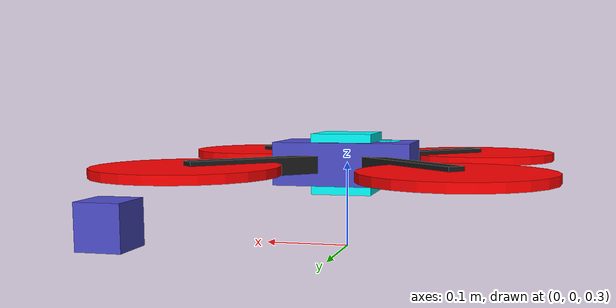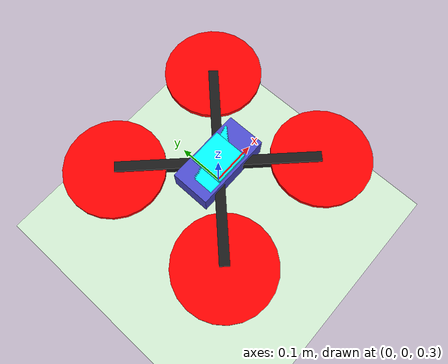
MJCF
<?xml version="1.0" ?>
<mujoco model="Quadcopter">
   <compiler angle="degree" coordinate="local" inertiafromgeom="true"/>
   <asset>
      <texture type="skybox" builtin="gradient" rgb1="1.0 1.0 1.0" rgb2="0.6 0.8 1.0" width="256" height="256"/>
   </asset>
   <worldbody>
      <geom name="ground" type="plane" size="5.0 5.0 0.02" friction="1.0" pos="0.0 0.0 0.0" rgba="0.8 0.9 0.8 1.0"/>
      <light directional="true" diffuse=".9 .9 .9" specular=".3 .3 .3" pos="0 0 4.0" dir="0 0.15 -1"/>
      <body name="plant" pos="0.0 0.0 0.4" quat="1 0 0 0">
         <geom name="plant_geom" type="box" pos="0.0 0.0 0.0" quat="1 0 0 0" size="0.08 0.04 0.025" mass="0.75" density="1000" rgba="0.3 0.3 0.8 1.0"/>
         <joint name="plant_root_joint" type="free" limited="false" pos="0.0 0.0 0.0" axis="0.0 0.0 1.0" range="-1.0 1.0" armature="0.0" damping="0.1" stiffness="0.0"/>
         <geom name="plant_rotor_arm_geom_0" type="box" pos="0.0 0.0 0.0" quat="0.92388 0 0 0.382683" size="0.2 0.01 0.01" mass="0.01" density="1000" rgba="0.1 0.1 0.1 1.0"/>
         <geom name="plant_rotor_prop_geom_0" type="cylinder" size="0.1 0.005" pos="0.1414213562373095 0.14142135623730953 0.0" mass="0.05" density="1000" rgba="1.0 0.0 0.0 1.0"/>
         <geom name="plant_rotor_arm_geom_1" type="box" pos="0.0 0.0 0.0" quat="0.382683 0 0 0.92388" size="0.2 0.01 0.01" mass="0.01" density="1000" rgba="0.1 0.1 0.1 1.0"/>
         <geom name="plant_rotor_prop_geom_1" type="cylinder" size="0.1 0.005" pos="-0.1414213562373095 0.14142135623730953 0.0" mass="0.05" density="1000" rgba="1.0 0.0 0.0 1.0"/>
         <geom name="plant_rotor_arm_geom_2" type="box" pos="0.0 0.0 0.0" quat="-0.382683 0 0 0.92388" size="0.2 0.01 0.01" mass="0.01" density="1000" rgba="0.1 0.1 0.1 1.0"/>
         <geom name="plant_rotor_prop_geom_2" type="cylinder" size="0.1 0.005" pos="-0.1414213562373095 -0.1414213562373095 0.0" mass="0.05" density="1000" rgba="1.0 0.0 0.0 1.0"/>
         <geom name="plant_rotor_arm_geom_3" type="box" pos="0.0 0.0 0.0" quat="-0.92388 0 0 0.382683" size="0.2 0.01 0.01" mass="0.01" density="1000" rgba="0.1 0.1 0.1 1.0"/>
         <geom name="plant_rotor_prop_geom_3" type="cylinder" size="0.1 0.005" pos="0.14142135623730948 -0.14142135623730956 0.0" mass="0.05" density="1000" rgba="1.0 0.0 0.0 1.0"/>
         <geom name="plant_unmodeled_mass" type="box" pos="0.2 0.2 -0.05" quat="1 0 0 0" size="0.025 0.025 0.025" mass="0.25" density="1000" rgba="0.3 0.3 0.8 1.0"/>
         <site name="plant_end1" type="sphere" pos="0.0 0.0 0.0" quat="1 0 0 0" size="0.01" rgba="0.1 0.1 0.5 1.0"/>
         <site name="plant_thrust" type="box" pos="0.0 0.0 0.0" quat="1 0 0 0" size="0.035 0.035 0.035" rgba="0.0 1 1 1.0"/>
         <site name="plant_Mx" type="box" pos="0.0 0.0 0.0" quat="1 0 0 0" size="0.06 0.035 0.025" rgba="0.0 1 1 1.0"/>
         <site name="plant_My" type="box" pos="0.0 0.0 0.0" quat="1 0 0 0" size="0.06 0.035 0.025" rgba="0.0 1 1 1.0"/>
         <site name="plant_Mz" type="box" pos="0.0 0.0 0.0" quat="1 0 0 0" size="0.06 0.035 0.025" rgba="0.0 1 1 1.0"/>
      </body>
      <body name="reference" pos="0.0 0.0 0.4" quat="1 0 0 0">
         <geom name="reference_geom" type="box" pos="0.0 0.0 0.0" quat="1 0 0 0" size="0.08 0.04 0.025" mass="0.75" density="1000" rgba="0.3 0.3 0.8 0.25"/>
         <joint name="reference_root_joint" type="free" limited="false" pos="0.0 0.0 0.0" axis="0.0 0.0 1.0" range="-1.0 1.0" armature="0.0" damping="0.1" stiffness="0.0"/>
         <geom name="reference_rotor_arm_geom_0" type="box" pos="0.0 0.0 0.0" quat="0.92388 0 0 0.382683" size="0.2 0.01 0.01" mass="0.01" density="1000" rgba="0.1 0.1 0.1 0.25"/>
         <geom name="reference_rotor_prop_geom_0" type="cylinder" size="0.1 0.005" pos="0.1414213562373095 0.14142135623730953 0.0" mass="0.05" density="1000" rgba="1.0 0.0 0.4 0.25"/>
         <geom name="reference_rotor_arm_geom_1" type="box" pos="0.0 0.0 0.0" quat="0.382683 0 0 0.92388" size="0.2 0.01 0.01" mass="0.01" density="1000" rgba="0.1 0.1 0.1 0.25"/>
         <geom name="reference_rotor_prop_geom_1" type="cylinder" size="0.1 0.005" pos="-0.1414213562373095 0.14142135623730953 0.0" mass="0.05" density="1000" rgba="1.0 0.0 0.4 0.25"/>
         <geom name="reference_rotor_arm_geom_2" type="box" pos="0.0 0.0 0.0" quat="-0.382683 0 0 0.92388" size="0.2 0.01 0.01" mass="0.01" density="1000" rgba="0.1 0.1 0.1 0.25"/>
         <geom name="reference_rotor_prop_geom_2" type="cylinder" size="0.1 0.005" pos="-0.1414213562373095 -0.1414213562373095 0.0" mass="0.05" density="1000" rgba="1.0 0.0 0.4 0.25"/>
         <geom name="reference_rotor_arm_geom_3" type="box" pos="0.0 0.0 0.0" quat="-0.92388 0 0 0.382683" size="0.2 0.01 0.01" mass="0.01" density="1000" rgba="0.1 0.1 0.1 0.25"/>
         <geom name="reference_rotor_prop_geom_3" type="cylinder" size="0.1 0.005" pos="0.14142135623730948 -0.14142135623730956 0.0" mass="0.05" density="1000" rgba="1.0 0.0 0.4 0.25"/>
         <geom name="reference_unmodeled_mass" type="box" pos="0.2 0.2 -0.05" quat="1 0 0 0" size="0.025 0.025 0.025" mass="0.25" density="1000" rgba="0.3 0.3 0.8 0.25"/>
         <site name="reference_end1" type="sphere" pos="0.0 0.0 0.0" quat="1 0 0 0" size="0.01" rgba="0.1 0.1 0.5 1.0"/>
         <site name="reference_thrust" type="box" pos="0.0 0.0 0.0" quat="1 0 0 0" size="0.035 0.035 0.035" rgba="0.0 1 1 0.25"/>
         <site name="reference_Mx" type="box" pos="0.0 0.0 0.0" quat="1 0 0 0" size="0.06 0.035 0.025" rgba="0.0 1 1 0.25"/>
         <site name="reference_My" type="box" pos="0.0 0.0 0.0" quat="1 0 0 0" size="0.06 0.035 0.025" rgba="0.0 1 1 0.25"/>
         <site name="reference_Mz" type="box" pos="0.0 0.0 0.0" quat="1 0 0 0" size="0.06 0.035 0.025" rgba="0.0 1 1 0.25"/>
      </body>
   </worldbody>
   <actuator>
      <motor ctrllimited="true" site="plant_thrust" ctrlrange="0.0 30.0" gear="0.0 0.0 1.0 0.0 0.0 0.0"/>
      <motor ctrllimited="true" site="plant_Mx" ctrlrange="-3.0 3.0" gear="0.0 0.0 0.0 1.0 0.0 0.0"/>
      <motor ctrllimited="true" site="plant_My" ctrlrange="-3.0 3.0" gear="0.0 0.0 0.0 0.0 1.0 0.0"/>
      <motor ctrllimited="true" site="plant_Mz" ctrlrange="-3.0 3.0" gear="0.0 0.0 0.0 0.0 0.0 1.0"/>
   </actuator>
   <actuator>
      <motor ctrllimited="true" site="reference_thrust" ctrlrange="0.0 30.0" gear="0.0 0.0 1.0 0.0 0.0 0.0"/>
      <motor ctrllimited="true" site="reference_Mx" ctrlrange="-3.0 3.0" gear="0.0 0.0 0.0 1.0 0.0 0.0"/>
      <motor ctrllimited="true" site="reference_My" ctrlrange="-3.0 3.0" gear="0.0 0.0 0.0 0.0 1.0 0.0"/>
      <motor ctrllimited="true" site="reference_Mz" ctrlrange="-3.0 3.0" gear="0.0 0.0 0.0 0.0 0.0 1.0"/>
   </actuator>
   <contact>
      <exclude body1="plant" body2="reference"/>
   </contact>
</mujoco>
